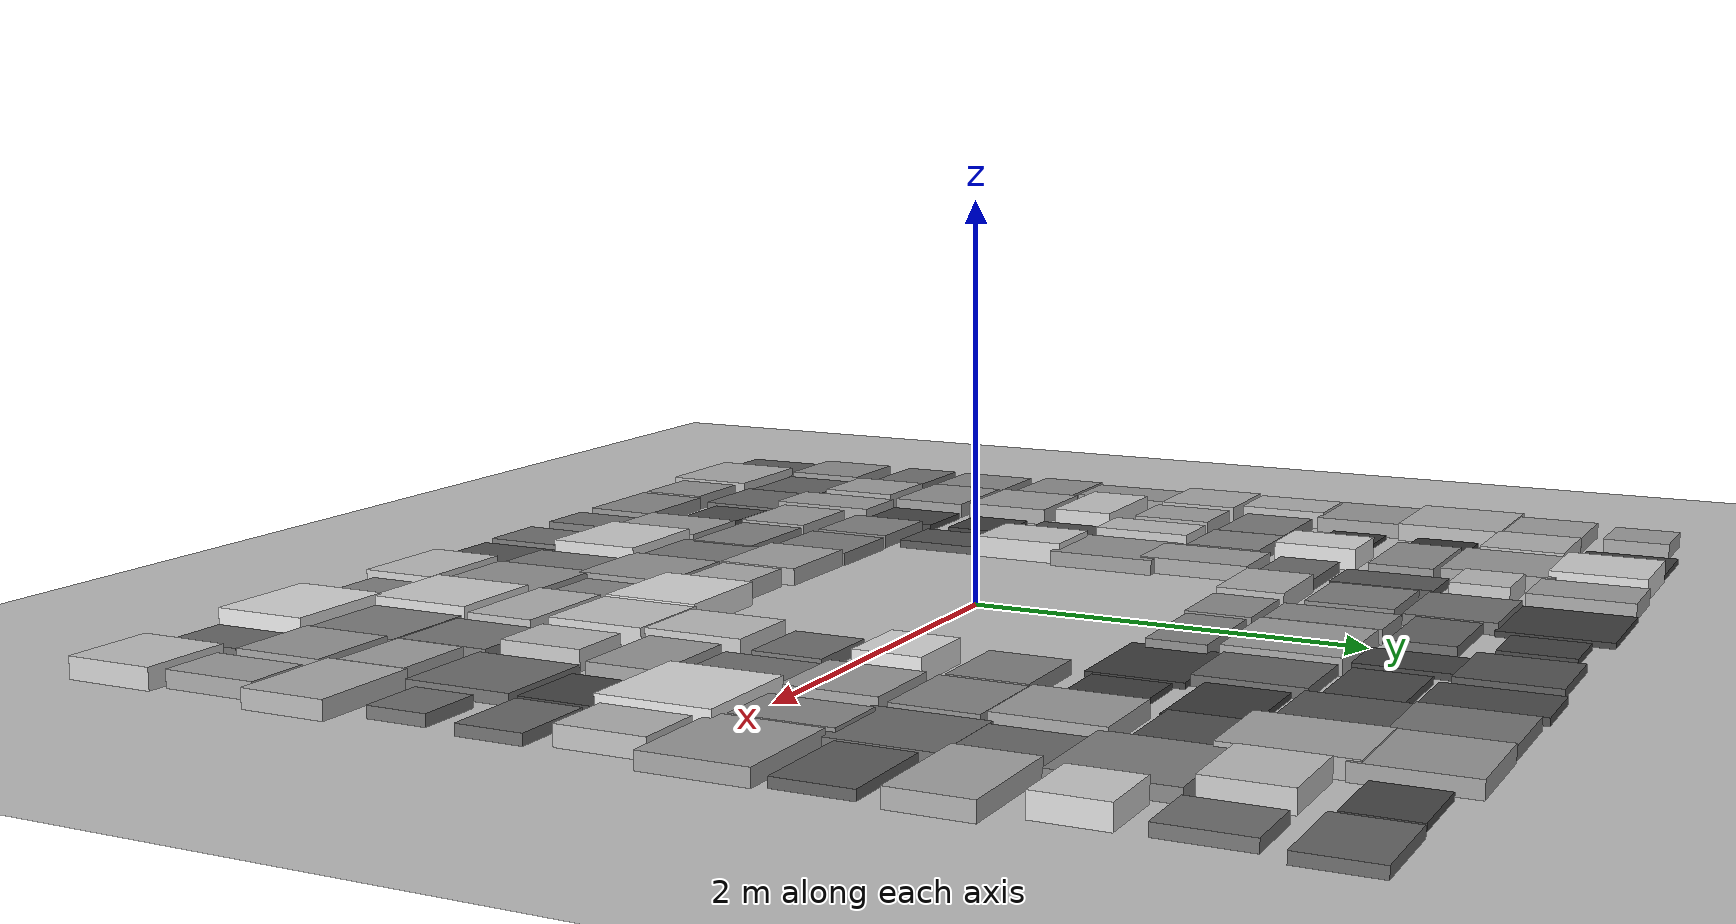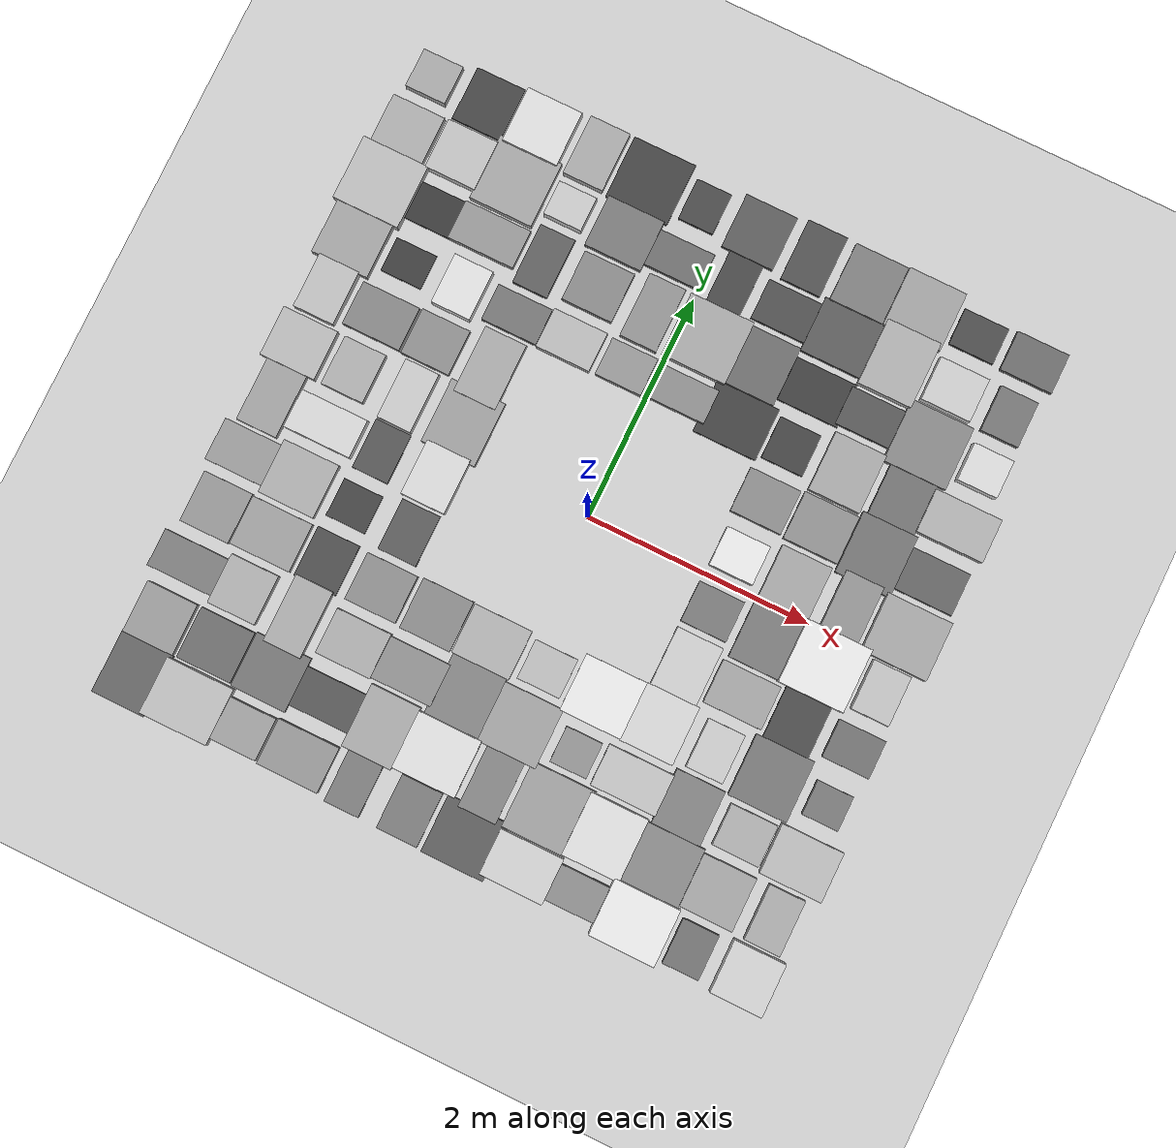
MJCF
<mujoco model="terrain_scene">
  <compiler angle="radian" coordinate="local" inertiafromgeom="true" />
  <option timestep="0.002" gravity="0.0 0.0 -9.81" iterations="50" solver="Newton" />
  <visual>
    <global offwidth="1920" offheight="1080" />
    <quality shadowsize="4096" />
    <headlight ambient="0.4 0.4 0.4" diffuse="0.6 0.6 0.6" />
  </visual>
  <asset>
    <texture name="grid_texture" type="2d" builtin="checker" rgb1="0.9 0.9 0.9" rgb2="0.7 0.7 0.7" width="512" height="512" />
    <material name="grid_material" texture="grid_texture" texrepeat="10 10" reflectance="0.1" />
  </asset>
  <worldbody>
    <geom name="ground" type="plane" size="6.0 6.0 0.1" pos="0 0 0" rgba="0.8 0.8 0.8 1.0" friction="1.0 0.005 0.0001" />
    <geom name="box_0" type="box" size="0.2351 0.2704 0.0235" pos="-2.7500 -2.7500 0.0235" rgba="0.389 0.389 0.389 1.000" friction="1.0 0.005 0.0001" />
    <geom name="box_1" type="box" size="0.2261 0.2267 0.0386" pos="-2.7500 -2.2500 0.0386" rgba="0.601 0.601 0.601 1.000" friction="1.0 0.005 0.0001" />
    <geom name="box_2" type="box" size="0.2954 0.1634 0.0303" pos="-2.7500 -1.7500 0.0303" rgba="0.484 0.484 0.484 1.000" friction="1.0 0.005 0.0001" />
    <geom name="box_3" type="box" size="0.2196 0.2249 0.0371" pos="-2.7500 -1.2500 0.0371" rgba="0.579 0.579 0.579 1.000" friction="1.0 0.005 0.0001" />
    <geom name="box_4" type="box" size="0.2637 0.1857 0.0385" pos="-2.7500 -0.7500 0.0385" rgba="0.599 0.599 0.599 1.000" friction="1.0 0.005 0.0001" />
    <geom name="box_5" type="box" size="0.1799 0.2823 0.0403" pos="-2.7500 -0.2500 0.0403" rgba="0.624 0.624 0.624 1.000" friction="1.0 0.005 0.0001" />
    <geom name="box_6" type="box" size="0.2470 0.2209 0.0469" pos="-2.7500 0.2500 0.0469" rgba="0.716 0.716 0.716 1.000" friction="1.0 0.005 0.0001" />
    <geom name="box_7" type="box" size="0.1817 0.2430 0.0484" pos="-2.7500 0.7500 0.0484" rgba="0.737 0.737 0.737 1.000" friction="1.0 0.005 0.0001" />
    <geom name="box_8" type="box" size="0.2549 0.2695 0.0412" pos="-2.7500 1.2500 0.0412" rgba="0.637 0.637 0.637 1.000" friction="1.0 0.005 0.0001" />
    <geom name="box_9" type="box" size="0.2979 0.2866 0.0478" pos="-2.7500 1.7500 0.0478" rgba="0.729 0.729 0.729 1.000" friction="1.0 0.005 0.0001" />
    <geom name="box_10" type="box" size="0.2369 0.2163 0.0438" pos="-2.7500 2.2500 0.0438" rgba="0.673 0.673 0.673 1.000" friction="1.0 0.005 0.0001" />
    <geom name="box_11" type="box" size="0.1817 0.1745 0.0424" pos="-2.7500 2.7500 0.0424" rgba="0.654 0.654 0.654 1.000" friction="1.0 0.005 0.0001" />
    <geom name="box_12" type="box" size="0.2997 0.2488 0.0478" pos="-2.2500 -2.7500 0.0478" rgba="0.728 0.728 0.728 1.000" friction="1.0 0.005 0.0001" />
    <geom name="box_13" type="box" size="0.2435 0.2245 0.0258" pos="-2.2500 -2.2500 0.0258" rgba="0.422 0.422 0.422 1.000" friction="1.0 0.005 0.0001" />
    <geom name="box_14" type="box" size="0.2124 0.2186 0.0439" pos="-2.2500 -1.7500 0.0439" rgba="0.675 0.675 0.675 1.000" friction="1.0 0.005 0.0001" />
    <geom name="box_15" type="box" size="0.2701 0.2144 0.0399" pos="-2.2500 -1.2500 0.0399" rgba="0.618 0.618 0.618 1.000" friction="1.0 0.005 0.0001" />
    <geom name="box_16" type="box" size="0.2496 0.2390 0.0437" pos="-2.2500 -0.7500 0.0437" rgba="0.672 0.672 0.672 1.000" friction="1.0 0.005 0.0001" />
    <geom name="box_17" type="box" size="0.2985 0.1698 0.0551" pos="-2.2500 -0.2500 0.0551" rgba="0.831 0.831 0.831 1.000" friction="1.0 0.005 0.0001" />
    <geom name="box_18" type="box" size="0.1880 0.2192 0.0441" pos="-2.2500 0.2500 0.0441" rgba="0.677 0.677 0.677 1.000" friction="1.0 0.005 0.0001" />
    <geom name="box_19" type="box" size="0.2601 0.1950 0.0331" pos="-2.2500 0.7500 0.0331" rgba="0.523 0.523 0.523 1.000" friction="1.0 0.005 0.0001" />
    <geom name="box_20" type="box" size="0.1838 0.1531 0.0128" pos="-2.2500 1.2500 0.0128" rgba="0.240 0.240 0.240 1.000" friction="1.0 0.005 0.0001" />
    <geom name="box_21" type="box" size="0.2707 0.1699 0.0120" pos="-2.2500 1.7500 0.0120" rgba="0.228 0.228 0.228 1.000" friction="1.0 0.005 0.0001" />
    <geom name="box_22" type="box" size="0.2282 0.2225 0.0492" pos="-2.2500 2.2500 0.0492" rgba="0.748 0.748 0.748 1.000" friction="1.0 0.005 0.0001" />
    <geom name="box_23" type="box" size="0.2220 0.2423 0.0150" pos="-2.2500 2.7500 0.0150" rgba="0.270 0.270 0.270 1.000" friction="1.0 0.005 0.0001" />
    <geom name="box_24" type="box" size="0.2115 0.1856 0.0398" pos="-1.7500 -2.7500 0.0398" rgba="0.618 0.618 0.618 1.000" friction="1.0 0.005 0.0001" />
    <geom name="box_25" type="box" size="0.2454 0.2395 0.0281" pos="-1.7500 -2.2500 0.0281" rgba="0.453 0.453 0.453 1.000" friction="1.0 0.005 0.0001" />
    <geom name="box_26" type="box" size="0.1679 0.2972 0.0429" pos="-1.7500 -1.7500 0.0429" rgba="0.660 0.660 0.660 1.000" friction="1.0 0.005 0.0001" />
    <geom name="box_27" type="box" size="0.1899 0.2240 0.0170" pos="-1.7500 -1.2500 0.0170" rgba="0.299 0.299 0.299 1.000" friction="1.0 0.005 0.0001" />
    <geom name="box_28" type="box" size="0.1767 0.1682 0.0145" pos="-1.7500 -0.7500 0.0145" rgba="0.263 0.263 0.263 1.000" friction="1.0 0.005 0.0001" />
    <geom name="box_29" type="box" size="0.1605 0.2217 0.0195" pos="-1.7500 -0.2500 0.0195" rgba="0.333 0.333 0.333 1.000" friction="1.0 0.005 0.0001" />
    <geom name="box_30" type="box" size="0.1520 0.2662 0.0515" pos="-1.7500 0.2500 0.0515" rgba="0.781 0.781 0.781 1.000" friction="1.0 0.005 0.0001" />
    <geom name="box_31" type="box" size="0.2175 0.2029 0.0354" pos="-1.7500 0.7500 0.0354" rgba="0.555 0.555 0.555 1.000" friction="1.0 0.005 0.0001" />
    <geom name="box_32" type="box" size="0.1748 0.2222 0.0580" pos="-1.7500 1.2500 0.0580" rgba="0.872 0.872 0.872 1.000" friction="1.0 0.005 0.0001" />
    <geom name="box_33" type="box" size="0.2978 0.1718 0.0380" pos="-1.7500 1.7500 0.0380" rgba="0.592 0.592 0.592 1.000" friction="1.0 0.005 0.0001" />
    <geom name="box_34" type="box" size="0.2824 0.2943 0.0418" pos="-1.7500 2.2500 0.0418" rgba="0.646 0.646 0.646 1.000" friction="1.0 0.005 0.0001" />
    <geom name="box_35" type="box" size="0.2503 0.2468 0.0573" pos="-1.7500 2.7500 0.0573" rgba="0.862 0.862 0.862 1.000" friction="1.0 0.005 0.0001" />
    <geom name="box_36" type="box" size="0.2725 0.2003 0.0371" pos="-1.2500 -2.7500 0.0371" rgba="0.579 0.579 0.579 1.000" friction="1.0 0.005 0.0001" />
    <geom name="box_37" type="box" size="0.2878 0.1726 0.0197" pos="-1.2500 -2.2500 0.0197" rgba="0.336 0.336 0.336 1.000" friction="1.0 0.005 0.0001" />
    <geom name="box_38" type="box" size="0.2448 0.1987 0.0434" pos="-1.2500 -1.7500 0.0434" rgba="0.668 0.668 0.668 1.000" friction="1.0 0.005 0.0001" />
    <geom name="box_39" type="box" size="0.2276 0.2103 0.0350" pos="-1.2500 -1.2500 0.0350" rgba="0.550 0.550 0.550 1.000" friction="1.0 0.005 0.0001" />
    <geom name="box_40" type="box" size="0.1714 0.2263 0.0209" pos="-1.2500 -0.7500 0.0209" rgba="0.353 0.353 0.353 1.000" friction="1.0 0.005 0.0001" />
    <geom name="box_41" type="box" size="0.1955 0.2445 0.0556" pos="-1.2500 -0.2500 0.0556" rgba="0.838 0.838 0.838 1.000" friction="1.0 0.005 0.0001" />
    <geom name="box_42" type="box" size="0.2440 0.2871 0.0397" pos="-1.2500 0.2500 0.0397" rgba="0.616 0.616 0.616 1.000" friction="1.0 0.005 0.0001" />
    <geom name="box_43" type="box" size="0.1884 0.2956 0.0426" pos="-1.2500 0.7500 0.0426" rgba="0.657 0.657 0.657 1.000" friction="1.0 0.005 0.0001" />
    <geom name="box_44" type="box" size="0.2478 0.1618 0.0285" pos="-1.2500 1.2500 0.0285" rgba="0.459 0.459 0.459 1.000" friction="1.0 0.005 0.0001" />
    <geom name="box_45" type="box" size="0.1579 0.2694 0.0225" pos="-1.2500 1.7500 0.0225" rgba="0.375 0.375 0.375 1.000" friction="1.0 0.005 0.0001" />
    <geom name="box_46" type="box" size="0.1709 0.1526 0.0515" pos="-1.2500 2.2500 0.0515" rgba="0.781 0.781 0.781 1.000" friction="1.0 0.005 0.0001" />
    <geom name="box_47" type="box" size="0.1812 0.2678 0.0427" pos="-1.2500 2.7500 0.0427" rgba="0.658 0.658 0.658 1.000" friction="1.0 0.005 0.0001" />
    <geom name="box_48" type="box" size="0.1540 0.2304 0.0301" pos="-0.7500 -2.7500 0.0301" rgba="0.481 0.481 0.481 1.000" friction="1.0 0.005 0.0001" />
    <geom name="box_49" type="box" size="0.2221 0.2754 0.0424" pos="-0.7500 -2.2500 0.0424" rgba="0.653 0.653 0.653 1.000" friction="1.0 0.005 0.0001" />
    <geom name="box_50" type="box" size="0.2818 0.1852 0.0355" pos="-0.7500 -1.7500 0.0355" rgba="0.557 0.557 0.557 1.000" friction="1.0 0.005 0.0001" />
    <geom name="box_51" type="box" size="0.2268 0.2233 0.0340" pos="-0.7500 -1.2500 0.0340" rgba="0.536 0.536 0.536 1.000" friction="1.0 0.005 0.0001" />
    <geom name="box_52" type="box" size="0.2420 0.1753 0.0473" pos="-0.7500 1.2500 0.0473" rgba="0.723 0.723 0.723 1.000" friction="1.0 0.005 0.0001" />
    <geom name="box_53" type="box" size="0.2272 0.2237 0.0340" pos="-0.7500 1.7500 0.0340" rgba="0.536 0.536 0.536 1.000" friction="1.0 0.005 0.0001" />
    <geom name="box_54" type="box" size="0.2557 0.2302 0.0299" pos="-0.7500 2.2500 0.0299" rgba="0.478 0.478 0.478 1.000" friction="1.0 0.005 0.0001" />
    <geom name="box_55" type="box" size="0.2817 0.2812 0.0146" pos="-0.7500 2.7500 0.0146" rgba="0.265 0.265 0.265 1.000" friction="1.0 0.005 0.0001" />
    <geom name="box_56" type="box" size="0.1813 0.2365 0.0298" pos="-0.2500 -2.7500 0.0298" rgba="0.477 0.477 0.477 1.000" friction="1.0 0.005 0.0001" />
    <geom name="box_57" type="box" size="0.2805 0.2500 0.0571" pos="-0.2500 -2.2500 0.0571" rgba="0.860 0.860 0.860 1.000" friction="1.0 0.005 0.0001" />
    <geom name="box_58" type="box" size="0.2425 0.2985 0.0324" pos="-0.2500 -1.7500 0.0324" rgba="0.513 0.513 0.513 1.000" friction="1.0 0.005 0.0001" />
    <geom name="box_59" type="box" size="0.2582 0.2173 0.0446" pos="-0.2500 -1.2500 0.0446" rgba="0.684 0.684 0.684 1.000" friction="1.0 0.005 0.0001" />
    <geom name="box_60" type="box" size="0.2073 0.1671 0.0378" pos="-0.2500 1.2500 0.0378" rgba="0.589 0.589 0.589 1.000" friction="1.0 0.005 0.0001" />
    <geom name="box_61" type="box" size="0.1639 0.2881 0.0367" pos="-0.2500 1.7500 0.0367" rgba="0.573 0.573 0.573 1.000" friction="1.0 0.005 0.0001" />
    <geom name="box_62" type="box" size="0.2530 0.1617 0.0265" pos="-0.2500 2.2500 0.0265" rgba="0.431 0.431 0.431 1.000" friction="1.0 0.005 0.0001" />
    <geom name="box_63" type="box" size="0.1578 0.1859 0.0161" pos="-0.2500 2.7500 0.0161" rgba="0.286 0.286 0.286 1.000" friction="1.0 0.005 0.0001" />
    <geom name="box_64" type="box" size="0.2776 0.2514 0.0215" pos="0.2500 -2.7500 0.0215" rgba="0.360 0.360 0.360 1.000" friction="1.0 0.005 0.0001" />
    <geom name="box_65" type="box" size="0.1673 0.2986 0.0322" pos="0.2500 -2.2500 0.0322" rgba="0.511 0.511 0.511 1.000" friction="1.0 0.005 0.0001" />
    <geom name="box_66" type="box" size="0.2606 0.2611 0.0406" pos="0.2500 -1.7500 0.0406" rgba="0.628 0.628 0.628 1.000" friction="1.0 0.005 0.0001" />
    <geom name="box_67" type="box" size="0.1902 0.1724 0.0474" pos="0.2500 -1.2500 0.0474" rgba="0.724 0.724 0.724 1.000" friction="1.0 0.005 0.0001" />
    <geom name="box_68" type="box" size="0.2715 0.1504 0.0351" pos="0.2500 1.2500 0.0351" rgba="0.552 0.552 0.552 1.000" friction="1.0 0.005 0.0001" />
    <geom name="box_69" type="box" size="0.2880 0.2843 0.0423" pos="0.2500 1.7500 0.0423" rgba="0.653 0.653 0.653 1.000" friction="1.0 0.005 0.0001" />
    <geom name="box_70" type="box" size="0.1533 0.2772 0.0160" pos="0.2500 2.2500 0.0160" rgba="0.285 0.285 0.285 1.000" friction="1.0 0.005 0.0001" />
    <geom name="box_71" type="box" size="0.2337 0.2441 0.0215" pos="0.2500 2.7500 0.0215" rgba="0.360 0.360 0.360 1.000" friction="1.0 0.005 0.0001" />
    <geom name="box_72" type="box" size="0.2793 0.2002 0.0532" pos="0.7500 -2.7500 0.0532" rgba="0.804 0.804 0.804 1.000" friction="1.0 0.005 0.0001" />
    <geom name="box_73" type="box" size="0.2841 0.2872 0.0398" pos="0.7500 -2.2500 0.0398" rgba="0.617 0.617 0.617 1.000" friction="1.0 0.005 0.0001" />
    <geom name="box_74" type="box" size="0.1612 0.1560 0.0360" pos="0.7500 -1.7500 0.0360" rgba="0.565 0.565 0.565 1.000" friction="1.0 0.005 0.0001" />
    <geom name="box_75" type="box" size="0.2707 0.2503 0.0600" pos="0.7500 -1.2500 0.0600" rgba="0.900 0.900 0.900 1.000" friction="1.0 0.005 0.0001" />
    <geom name="box_76" type="box" size="0.2828 0.2339 0.0144" pos="0.7500 1.2500 0.0144" rgba="0.262 0.262 0.262 1.000" friction="1.0 0.005 0.0001" />
    <geom name="box_77" type="box" size="0.2219 0.2650 0.0263" pos="0.7500 1.7500 0.0263" rgba="0.429 0.429 0.429 1.000" friction="1.0 0.005 0.0001" />
    <geom name="box_78" type="box" size="0.2578 0.1806 0.0178" pos="0.7500 2.2500 0.0178" rgba="0.309 0.309 0.309 1.000" friction="1.0 0.005 0.0001" />
    <geom name="box_79" type="box" size="0.1786 0.2753 0.0184" pos="0.7500 2.7500 0.0184" rgba="0.318 0.318 0.318 1.000" friction="1.0 0.005 0.0001" />
    <geom name="box_80" type="box" size="0.2483 0.1557 0.0347" pos="1.2500 -2.7500 0.0347" rgba="0.545 0.545 0.545 1.000" friction="1.0 0.005 0.0001" />
    <geom name="box_81" type="box" size="0.2549 0.2741 0.0570" pos="1.2500 -2.2500 0.0570" rgba="0.858 0.858 0.858 1.000" friction="1.0 0.005 0.0001" />
    <geom name="box_82" type="box" size="0.2880 0.1801 0.0493" pos="1.2500 -1.7500 0.0493" rgba="0.750 0.750 0.750 1.000" friction="1.0 0.005 0.0001" />
    <geom name="box_83" type="box" size="0.2367 0.2560 0.0548" pos="1.2500 -1.2500 0.0548" rgba="0.826 0.826 0.826 1.000" friction="1.0 0.005 0.0001" />
    <geom name="box_84" type="box" size="0.2034 0.2654 0.0525" pos="1.2500 -0.7500 0.0525" rgba="0.795 0.795 0.795 1.000" friction="1.0 0.005 0.0001" />
    <geom name="box_85" type="box" size="0.2021 0.1800 0.0294" pos="1.2500 -0.2500 0.0294" rgba="0.471 0.471 0.471 1.000" friction="1.0 0.005 0.0001" />
    <geom name="box_86" type="box" size="0.1931 0.1725 0.0600" pos="1.2500 0.2500 0.0600" rgba="0.900 0.900 0.900 1.000" friction="1.0 0.005 0.0001" />
    <geom name="box_87" type="box" size="0.2263 0.1972 0.0345" pos="1.2500 0.7500 0.0345" rgba="0.543 0.543 0.543 1.000" friction="1.0 0.005 0.0001" />
    <geom name="box_88" type="box" size="0.1843 0.1869 0.0145" pos="1.2500 1.2500 0.0145" rgba="0.263 0.263 0.263 1.000" friction="1.0 0.005 0.0001" />
    <geom name="box_89" type="box" size="0.2719 0.1951 0.0137" pos="1.2500 1.7500 0.0137" rgba="0.252 0.252 0.252 1.000" friction="1.0 0.005 0.0001" />
    <geom name="box_90" type="box" size="0.2751 0.2476 0.0215" pos="1.2500 2.2500 0.0215" rgba="0.361 0.361 0.361 1.000" friction="1.0 0.005 0.0001" />
    <geom name="box_91" type="box" size="0.2391 0.2601 0.0309" pos="1.2500 2.7500 0.0309" rgba="0.493 0.493 0.493 1.000" friction="1.0 0.005 0.0001" />
    <geom name="box_92" type="box" size="0.2895 0.2464 0.0600" pos="1.7500 -2.7500 0.0600" rgba="0.900 0.900 0.900 1.000" friction="1.0 0.005 0.0001" />
    <geom name="box_93" type="box" size="0.2664 0.2578 0.0335" pos="1.7500 -2.2500 0.0335" rgba="0.529 0.529 0.529 1.000" friction="1.0 0.005 0.0001" />
    <geom name="box_94" type="box" size="0.2152 0.2408 0.0316" pos="1.7500 -1.7500 0.0316" rgba="0.502 0.502 0.502 1.000" friction="1.0 0.005 0.0001" />
    <geom name="box_95" type="box" size="0.1617 0.2144 0.0513" pos="1.7500 -1.2500 0.0513" rgba="0.778 0.778 0.778 1.000" friction="1.0 0.005 0.0001" />
    <geom name="box_96" type="box" size="0.2576 0.1905 0.0412" pos="1.7500 -0.7500 0.0412" rgba="0.637 0.637 0.637 1.000" friction="1.0 0.005 0.0001" />
    <geom name="box_97" type="box" size="0.2299 0.2708 0.0297" pos="1.7500 -0.2500 0.0297" rgba="0.476 0.476 0.476 1.000" friction="1.0 0.005 0.0001" />
    <geom name="box_98" type="box" size="0.2227 0.2384 0.0417" pos="1.7500 0.2500 0.0417" rgba="0.644 0.644 0.644 1.000" friction="1.0 0.005 0.0001" />
    <geom name="box_99" type="box" size="0.2425 0.2123 0.0359" pos="1.7500 0.7500 0.0359" rgba="0.563 0.563 0.563 1.000" friction="1.0 0.005 0.0001" />
    <geom name="box_100" type="box" size="0.2284 0.2640 0.0423" pos="1.7500 1.2500 0.0423" rgba="0.652 0.652 0.652 1.000" friction="1.0 0.005 0.0001" />
    <geom name="box_101" type="box" size="0.2599 0.1695 0.0200" pos="1.7500 1.7500 0.0200" rgba="0.340 0.340 0.340 1.000" friction="1.0 0.005 0.0001" />
    <geom name="box_102" type="box" size="0.2390 0.2959 0.0445" pos="1.7500 2.2500 0.0445" rgba="0.682 0.682 0.682 1.000" friction="1.0 0.005 0.0001" />
    <geom name="box_103" type="box" size="0.2567 0.2644 0.0408" pos="1.7500 2.7500 0.0408" rgba="0.632 0.632 0.632 1.000" friction="1.0 0.005 0.0001" />
    <geom name="box_104" type="box" size="0.1595 0.1958 0.0273" pos="2.2500 -2.7500 0.0273" rgba="0.442 0.442 0.442 1.000" friction="1.0 0.005 0.0001" />
    <geom name="box_105" type="box" size="0.2327 0.2318 0.0410" pos="2.2500 -2.2500 0.0410" rgba="0.633 0.633 0.633 1.000" friction="1.0 0.005 0.0001" />
    <geom name="box_106" type="box" size="0.2050 0.1812 0.0436" pos="2.2500 -1.7500 0.0436" rgba="0.671 0.671 0.671 1.000" friction="1.0 0.005 0.0001" />
    <geom name="box_107" type="box" size="0.2583 0.2700 0.0288" pos="2.2500 -1.2500 0.0288" rgba="0.463 0.463 0.463 1.000" friction="1.0 0.005 0.0001" />
    <geom name="box_108" type="box" size="0.2015 0.2607 0.0165" pos="2.2500 -0.7500 0.0165" rgba="0.291 0.291 0.291 1.000" friction="1.0 0.005 0.0001" />
    <geom name="box_109" type="box" size="0.2885 0.2803 0.0600" pos="2.2500 -0.2500 0.0600" rgba="0.900 0.900 0.900 1.000" friction="1.0 0.005 0.0001" />
    <geom name="box_110" type="box" size="0.1676 0.2796 0.0367" pos="2.2500 0.2500 0.0367" rgba="0.574 0.574 0.574 1.000" friction="1.0 0.005 0.0001" />
    <geom name="box_111" type="box" size="0.2450 0.2746 0.0279" pos="2.2500 0.7500 0.0279" rgba="0.450 0.450 0.450 1.000" friction="1.0 0.005 0.0001" />
    <geom name="box_112" type="box" size="0.2076 0.2549 0.0275" pos="2.2500 1.2500 0.0275" rgba="0.445 0.445 0.445 1.000" friction="1.0 0.005 0.0001" />
    <geom name="box_113" type="box" size="0.2790 0.2807 0.0335" pos="2.2500 1.7500 0.0335" rgba="0.529 0.529 0.529 1.000" friction="1.0 0.005 0.0001" />
    <geom name="box_114" type="box" size="0.2188 0.1941 0.0523" pos="2.2500 2.2500 0.0523" rgba="0.792 0.792 0.792 1.000" friction="1.0 0.005 0.0001" />
    <geom name="box_115" type="box" size="0.1982 0.1627 0.0169" pos="2.2500 2.7500 0.0169" rgba="0.296 0.296 0.296 1.000" friction="1.0 0.005 0.0001" />
    <geom name="box_116" type="box" size="0.2271 0.2292 0.0534" pos="2.7500 -2.7500 0.0534" rgba="0.808 0.808 0.808 1.000" friction="1.0 0.005 0.0001" />
    <geom name="box_117" type="box" size="0.1570 0.2407 0.0428" pos="2.7500 -2.2500 0.0428" rgba="0.659 0.659 0.659 1.000" friction="1.0 0.005 0.0001" />
    <geom name="box_118" type="box" size="0.2718 0.2168 0.0470" pos="2.7500 -1.7500 0.0470" rgba="0.719 0.719 0.719 1.000" friction="1.0 0.005 0.0001" />
    <geom name="box_119" type="box" size="0.1588 0.1512 0.0290" pos="2.7500 -1.2500 0.0290" rgba="0.466 0.466 0.466 1.000" friction="1.0 0.005 0.0001" />
    <geom name="box_120" type="box" size="0.2071 0.1668 0.0272" pos="2.7500 -0.7500 0.0272" rgba="0.440 0.440 0.440 1.000" friction="1.0 0.005 0.0001" />
    <geom name="box_121" type="box" size="0.1654 0.2192 0.0492" pos="2.7500 -0.2500 0.0492" rgba="0.749 0.749 0.749 1.000" friction="1.0 0.005 0.0001" />
    <geom name="box_122" type="box" size="0.2878 0.2590 0.0416" pos="2.7500 0.2500 0.0416" rgba="0.642 0.642 0.642 1.000" friction="1.0 0.005 0.0001" />
    <geom name="box_123" type="box" size="0.2566 0.1867 0.0238" pos="2.7500 0.7500 0.0238" rgba="0.393 0.393 0.393 1.000" friction="1.0 0.005 0.0001" />
    <geom name="box_124" type="box" size="0.2948 0.1931 0.0447" pos="2.7500 1.2500 0.0447" rgba="0.686 0.686 0.686 1.000" friction="1.0 0.005 0.0001" />
    <geom name="box_125" type="box" size="0.1768 0.1684 0.0564" pos="2.7500 1.7500 0.0564" rgba="0.849 0.849 0.849 1.000" friction="1.0 0.005 0.0001" />
    <geom name="box_126" type="box" size="0.1671 0.2045 0.0287" pos="2.7500 2.2500 0.0287" rgba="0.461 0.461 0.461 1.000" friction="1.0 0.005 0.0001" />
    <geom name="box_127" type="box" size="0.2313 0.1776 0.0259" pos="2.7500 2.7500 0.0259" rgba="0.422 0.422 0.422 1.000" friction="1.0 0.005 0.0001" />
    <light name="main_light" pos="0 0 5" dir="0 0 -1" diffuse="0.6 0.6 0.6" specular="0.3 0.3 0.3" castshadow="true" />
    <camera name="track_cam" mode="trackcom" pos="3.0 0 2" xyaxes="0 1 0 -0.5 0 1" />
    <camera name="overview" pos="5 5 8" quat="0.5 0.5 -0.5 -0.5" />
  </worldbody>
</mujoco>
